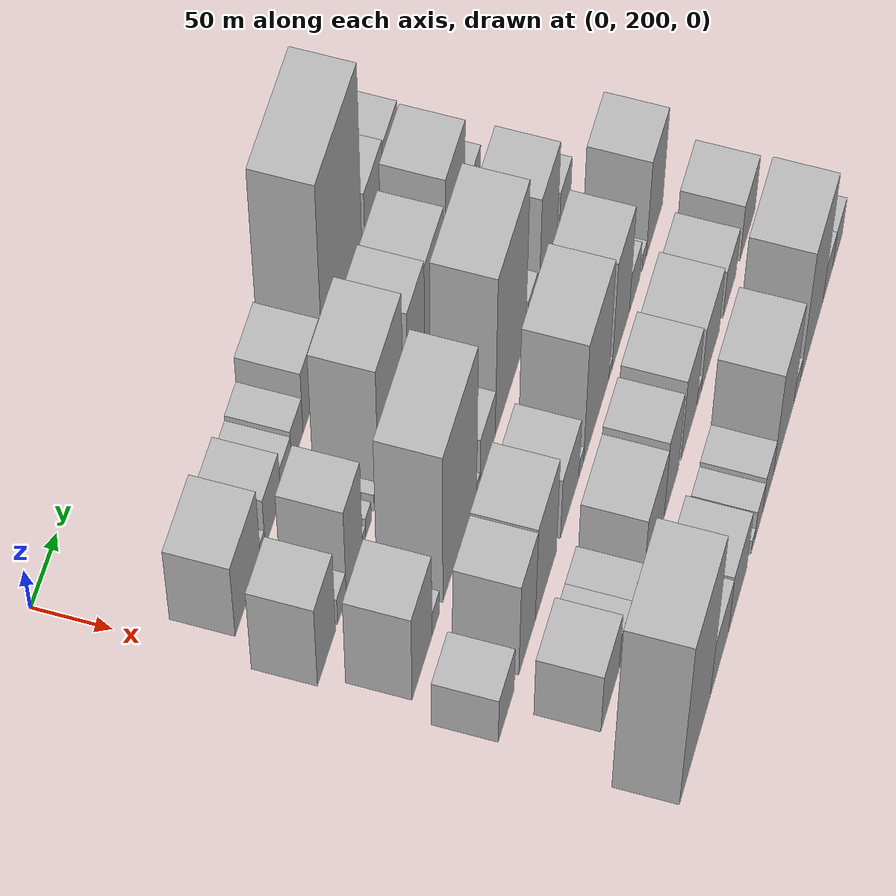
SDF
<sdf version="1.6">
 <world name="default">
  <model name="building_27">
   <static>1</static>
   <pose>100.0000 240.7146 0 0.000000 0.000000 0.000000</pose>
   <link name="link">
    <pose>0 0 45.00 0 0 0</pose>
    <collision name="collision"><geometry><box><size>40.0000 51.0102 90.0000</size></box></geometry></collision>
    <visual name="visual">
     <cast_shadows>0</cast_shadows>
     <geometry><box><size>40.0000 51.0102 90.0000</size></box></geometry>
     <material>
      <script>
       <uri>model://HANNAS_wall/materials/scripts</uri>
       <uri>model://HANNAS_wall/materials/textures</uri>
       <name>vrc/HANNAS_wall</name>
      </script>
     </material>
    </visual>
   </link>
  </model>
  <model name="building_28">
   <static>1</static>
   <pose>100.0000 270.7836 0 0.000000 0.000000 0.000000</pose>
   <link name="link">
    <pose>0 0 10.50 0 0 0</pose>
    <collision name="collision"><geometry><box><size>40.0000 9.1279 21.0000</size></box></geometry></collision>
    <visual name="visual">
     <cast_shadows>0</cast_shadows>
     <geometry><box><size>40.0000 9.1279 21.0000</size></box></geometry>
     <material>
      <script>
       <uri>model://HANNAS_wall/materials/scripts</uri>
       <uri>model://HANNAS_wall/materials/textures</uri>
       <name>vrc/HANNAS_wall</name>
      </script>
     </material>
    </visual>
   </link>
  </model>
  <model name="building_29">
   <static>1</static>
   <pose>100.0000 291.2869 0 0.000000 0.000000 0.000000</pose>
   <link name="link">
    <pose>0 0 30.00 0 0 0</pose>
    <collision name="collision"><geometry><box><size>40.0000 31.8785 60.0000</size></box></geometry></collision>
    <visual name="visual">
     <cast_shadows>0</cast_shadows>
     <geometry><box><size>40.0000 31.8785 60.0000</size></box></geometry>
     <material>
      <script>
       <uri>model://HANNAS_wall/materials/scripts</uri>
       <uri>model://HANNAS_wall/materials/textures</uri>
       <name>vrc/HANNAS_wall</name>
      </script>
     </material>
    </visual>
   </link>
  </model>
  <model name="building_30">
   <static>1</static>
   <pose>100.0000 318.4510 0 0.000000 0.000000 0.000000</pose>
   <link name="link">
    <pose>0 0 19.50 0 0 0</pose>
    <collision name="collision"><geometry><box><size>40.0000 22.4497 39.0000</size></box></geometry></collision>
    <visual name="visual">
     <cast_shadows>0</cast_shadows>
     <geometry><box><size>40.0000 22.4497 39.0000</size></box></geometry>
     <material>
      <script>
       <uri>model://HANNAS_wall/materials/scripts</uri>
       <uri>model://HANNAS_wall/materials/textures</uri>
       <name>vrc/HANNAS_wall</name>
      </script>
     </material>
    </visual>
   </link>
  </model>
  <model name="building_31">
   <static>1</static>
   <pose>100.0000 341.3287 0 0.000000 0.000000 0.000000</pose>
   <link name="link">
    <pose>0 0 22.50 0 0 0</pose>
    <collision name="collision"><geometry><box><size>40.0000 23.3058 45.0000</size></box></geometry></collision>
    <visual name="visual">
     <cast_shadows>0</cast_shadows>
     <geometry><box><size>40.0000 23.3058 45.0000</size></box></geometry>
     <material>
      <script>
       <uri>model://HANNAS_wall/materials/scripts</uri>
       <uri>model://HANNAS_wall/materials/textures</uri>
       <name>vrc/HANNAS_wall</name>
      </script>
     </material>
    </visual>
   </link>
  </model>
  <model name="building_32">
   <static>1</static>
   <pose>100.0000 372.1104 0 0.000000 0.000000 0.000000</pose>
   <link name="link">
    <pose>0 0 37.50 0 0 0</pose>
    <collision name="collision"><geometry><box><size>40.0000 38.2575 75.0000</size></box></geometry></collision>
    <visual name="visual">
     <cast_shadows>0</cast_shadows>
     <geometry><box><size>40.0000 38.2575 75.0000</size></box></geometry>
     <material>
      <script>
       <uri>model://HANNAS_wall/materials/scripts</uri>
       <uri>model://HANNAS_wall/materials/textures</uri>
       <name>vrc/HANNAS_wall</name>
      </script>
     </material>
    </visual>
   </link>
  </model>
  <model name="building_33">
   <static>1</static>
   <pose>100.0000 435.8190 0 0.000000 0.000000 0.000000</pose>
   <link name="link">
    <pose>0 0 112.50 0 0 0</pose>
    <collision name="collision"><geometry><box><size>40.0000 83.1598 225.0000</size></box></geometry></collision>
    <visual name="visual">
     <cast_shadows>0</cast_shadows>
     <geometry><box><size>40.0000 83.1598 225.0000</size></box></geometry>
     <material>
      <script>
       <uri>model://HANNAS_wall/materials/scripts</uri>
       <uri>model://HANNAS_wall/materials/textures</uri>
       <name>vrc/HANNAS_wall</name>
      </script>
     </material>
    </visual>
   </link>
  </model>
  <model name="building_34">
   <static>1</static>
   <pose>100.0000 502.7653 0 0.000000 0.000000 0.000000</pose>
   <link name="link">
    <pose>0 0 33.00 0 0 0</pose>
    <collision name="collision"><geometry><box><size>40.0000 38.7329 66.0000</size></box></geometry></collision>
    <visual name="visual">
     <cast_shadows>0</cast_shadows>
     <geometry><box><size>40.0000 38.7329 66.0000</size></box></geometry>
     <material>
      <script>
       <uri>model://HANNAS_wall/materials/scripts</uri>
       <uri>model://HANNAS_wall/materials/textures</uri>
       <name>vrc/HANNAS_wall</name>
      </script>
     </material>
    </visual>
   </link>
  </model>
  <model name="building_35">
   <static>1</static>
   <pose>100.0000 538.1720 0 0.000000 0.000000 0.000000</pose>
   <link name="link">
    <pose>0 0 30.00 0 0 0</pose>
    <collision name="collision"><geometry><box><size>40.0000 32.0804 60.0000</size></box></geometry></collision>
    <visual name="visual">
     <cast_shadows>0</cast_shadows>
     <geometry><box><size>40.0000 32.0804 60.0000</size></box></geometry>
     <material>
      <script>
       <uri>model://HANNAS_wall/materials/scripts</uri>
       <uri>model://HANNAS_wall/materials/textures</uri>
       <name>vrc/HANNAS_wall</name>
      </script>
     </material>
    </visual>
   </link>
  </model>
  <model name="building_78">
   <static>1</static>
   <pose>155.0000 216.4168 0 0.000000 0.000000 0.000000</pose>
   <link name="link">
    <pose>0 0 51.00 0 0 0</pose>
    <collision name="collision"><geometry><box><size>40.0000 36.9264 102.0000</size></box></geometry></collision>
    <visual name="visual">
     <cast_shadows>0</cast_shadows>
     <geometry><box><size>40.0000 36.9264 102.0000</size></box></geometry>
     <material>
      <script>
       <uri>model://HANNAS_wall/materials/scripts</uri>
       <uri>model://HANNAS_wall/materials/textures</uri>
       <name>vrc/HANNAS_wall</name>
      </script>
     </material>
    </visual>
   </link>
  </model>
  <model name="building_79">
   <static>1</static>
   <pose>155.0000 247.8972 0 0.000000 0.000000 0.000000</pose>
   <link name="link">
    <pose>0 0 16.50 0 0 0</pose>
    <collision name="collision"><geometry><box><size>40.0000 18.0346 33.0000</size></box></geometry></collision>
    <visual name="visual">
     <cast_shadows>0</cast_shadows>
     <geometry><box><size>40.0000 18.0346 33.0000</size></box></geometry>
     <material>
      <script>
       <uri>model://HANNAS_wall/materials/scripts</uri>
       <uri>model://HANNAS_wall/materials/textures</uri>
       <name>vrc/HANNAS_wall</name>
      </script>
     </material>
    </visual>
   </link>
  </model>
  <model name="building_80">
   <static>1</static>
   <pose>155.0000 273.6293 0 0.000000 0.000000 0.000000</pose>
   <link name="link">
    <pose>0 0 55.50 0 0 0</pose>
    <collision name="collision"><geometry><box><size>40.0000 33.4297 111.0000</size></box></geometry></collision>
    <visual name="visual">
     <cast_shadows>0</cast_shadows>
     <geometry><box><size>40.0000 33.4297 111.0000</size></box></geometry>
     <material>
      <script>
       <uri>model://HANNAS_wall/materials/scripts</uri>
       <uri>model://HANNAS_wall/materials/textures</uri>
       <name>vrc/HANNAS_wall</name>
      </script>
     </material>
    </visual>
   </link>
  </model>
  <model name="building_81">
   <static>1</static>
   <pose>155.0000 293.7984 0 0.000000 0.000000 0.000000</pose>
   <link name="link">
    <pose>0 0 7.50 0 0 0</pose>
    <collision name="collision"><geometry><box><size>40.0000 6.9085 15.0000</size></box></geometry></collision>
    <visual name="visual">
     <cast_shadows>0</cast_shadows>
     <geometry><box><size>40.0000 6.9085 15.0000</size></box></geometry>
     <material>
      <script>
       <uri>model://HANNAS_wall/materials/scripts</uri>
       <uri>model://HANNAS_wall/materials/textures</uri>
       <name>vrc/HANNAS_wall</name>
      </script>
     </material>
    </visual>
   </link>
  </model>
  <model name="building_82">
   <static>1</static>
   <pose>155.0000 303.1619 0 0.000000 0.000000 0.000000</pose>
   <link name="link">
    <pose>0 0 12.00 0 0 0</pose>
    <collision name="collision"><geometry><box><size>40.0000 11.8185 24.0000</size></box></geometry></collision>
    <visual name="visual">
     <cast_shadows>0</cast_shadows>
     <geometry><box><size>40.0000 11.8185 24.0000</size></box></geometry>
     <material>
      <script>
       <uri>model://HANNAS_wall/materials/scripts</uri>
       <uri>model://HANNAS_wall/materials/textures</uri>
       <name>vrc/HANNAS_wall</name>
      </script>
     </material>
    </visual>
   </link>
  </model>
  <model name="building_83">
   <static>1</static>
   <pose>155.0000 319.4880 0 0.000000 0.000000 0.000000</pose>
   <link name="link">
    <pose>0 0 10.50 0 0 0</pose>
    <collision name="collision"><geometry><box><size>40.0000 8.8337 21.0000</size></box></geometry></collision>
    <visual name="visual">
     <cast_shadows>0</cast_shadows>
     <geometry><box><size>40.0000 8.8337 21.0000</size></box></geometry>
     <material>
      <script>
       <uri>model://HANNAS_wall/materials/scripts</uri>
       <uri>model://HANNAS_wall/materials/textures</uri>
       <name>vrc/HANNAS_wall</name>
      </script>
     </material>
    </visual>
   </link>
  </model>
  <model name="building_84">
   <static>1</static>
   <pose>155.0000 350.1157 0 0.000000 0.000000 0.000000</pose>
   <link name="link">
    <pose>0 0 79.50 0 0 0</pose>
    <collision name="collision"><geometry><box><size>40.0000 52.4217 159.0000</size></box></geometry></collision>
    <visual name="visual">
     <cast_shadows>0</cast_shadows>
     <geometry><box><size>40.0000 52.4217 159.0000</size></box></geometry>
     <material>
      <script>
       <uri>model://HANNAS_wall/materials/scripts</uri>
       <uri>model://HANNAS_wall/materials/textures</uri>
       <name>vrc/HANNAS_wall</name>
      </script>
     </material>
    </visual>
   </link>
  </model>
  <model name="building_85">
   <static>1</static>
   <pose>155.0000 404.3906 0 0.000000 0.000000 0.000000</pose>
   <link name="link">
    <pose>0 0 58.50 0 0 0</pose>
    <collision name="collision"><geometry><box><size>40.0000 36.1281 117.0000</size></box></geometry></collision>
    <visual name="visual">
     <cast_shadows>0</cast_shadows>
     <geometry><box><size>40.0000 36.1281 117.0000</size></box></geometry>
     <material>
      <script>
       <uri>model://HANNAS_wall/materials/scripts</uri>
       <uri>model://HANNAS_wall/materials/textures</uri>
       <name>vrc/HANNAS_wall</name>
      </script>
     </material>
    </visual>
   </link>
  </model>
  <model name="building_86">
   <static>1</static>
   <pose>155.0000 442.9850 0 0.000000 0.000000 0.000000</pose>
   <link name="link">
    <pose>0 0 55.50 0 0 0</pose>
    <collision name="collision"><geometry><box><size>40.0000 41.0607 111.0000</size></box></geometry></collision>
    <visual name="visual">
     <cast_shadows>0</cast_shadows>
     <geometry><box><size>40.0000 41.0607 111.0000</size></box></geometry>
     <material>
      <script>
       <uri>model://HANNAS_wall/materials/scripts</uri>
       <uri>model://HANNAS_wall/materials/textures</uri>
       <name>vrc/HANNAS_wall</name>
      </script>
     </material>
    </visual>
   </link>
  </model>
  <model name="building_87">
   <static>1</static>
   <pose>155.0000 488.6157 0 0.000000 0.000000 0.000000</pose>
   <link name="link">
    <pose>0 0 67.50 0 0 0</pose>
    <collision name="collision"><geometry><box><size>40.0000 42.2006 135.0000</size></box></geometry></collision>
    <visual name="visual">
     <cast_shadows>0</cast_shadows>
     <geometry><box><size>40.0000 42.2006 135.0000</size></box></geometry>
     <material>
      <script>
       <uri>model://HANNAS_wall/materials/scripts</uri>
       <uri>model://HANNAS_wall/materials/textures</uri>
       <name>vrc/HANNAS_wall</name>
      </script>
     </material>
    </visual>
   </link>
  </model>
  <model name="building_88">
   <static>1</static>
   <pose>155.0000 531.9829 0 0.000000 0.000000 0.000000</pose>
   <link name="link">
    <pose>0 0 24.00 0 0 0</pose>
    <collision name="collision"><geometry><box><size>40.0000 26.5337 48.0000</size></box></geometry></collision>
    <visual name="visual">
     <cast_shadows>0</cast_shadows>
     <geometry><box><size>40.0000 26.5337 48.0000</size></box></geometry>
     <material>
      <script>
       <uri>model://HANNAS_wall/materials/scripts</uri>
       <uri>model://HANNAS_wall/materials/textures</uri>
       <name>vrc/HANNAS_wall</name>
      </script>
     </material>
    </visual>
   </link>
  </model>
  <model name="building_133">
   <static>1</static>
   <pose>210.0000 225.2152 0 0.000000 0.000000 0.000000</pose>
   <link name="link">
    <pose>0 0 54.00 0 0 0</pose>
    <collision name="collision"><geometry><box><size>40.0000 41.5363 108.0000</size></box></geometry></collision>
    <visual name="visual">
     <cast_shadows>0</cast_shadows>
     <geometry><box><size>40.0000 41.5363 108.0000</size></box></geometry>
     <material>
      <script>
       <uri>model://HANNAS_wall/materials/scripts</uri>
       <uri>model://HANNAS_wall/materials/textures</uri>
       <name>vrc/HANNAS_wall</name>
      </script>
     </material>
    </visual>
   </link>
  </model>
  <model name="building_134">
   <static>1</static>
   <pose>210.0000 254.0594 0 0.000000 0.000000 0.000000</pose>
   <link name="link">
    <pose>0 0 15.00 0 0 0</pose>
    <collision name="collision"><geometry><box><size>40.0000 16.1522 30.0000</size></box></geometry></collision>
    <visual name="visual">
     <cast_shadows>0</cast_shadows>
     <geometry><box><size>40.0000 16.1522 30.0000</size></box></geometry>
     <material>
      <script>
       <uri>model://HANNAS_wall/materials/scripts</uri>
       <uri>model://HANNAS_wall/materials/textures</uri>
       <name>vrc/HANNAS_wall</name>
      </script>
     </material>
    </visual>
   </link>
  </model>
  <model name="building_135">
   <static>1</static>
   <pose>210.0000 305.4260 0 0.000000 0.000000 0.000000</pose>
   <link name="link">
    <pose>0 0 93.00 0 0 0</pose>
    <collision name="collision"><geometry><box><size>40.0000 72.5810 186.0000</size></box></geometry></collision>
    <visual name="visual">
     <cast_shadows>0</cast_shadows>
     <geometry><box><size>40.0000 72.5810 186.0000</size></box></geometry>
     <material>
      <script>
       <uri>model://HANNAS_wall/materials/scripts</uri>
       <uri>model://HANNAS_wall/materials/textures</uri>
       <name>vrc/HANNAS_wall</name>
      </script>
     </material>
    </visual>
   </link>
  </model>
  <model name="building_136">
   <static>1</static>
   <pose>210.0000 345.4363 0 0.000000 0.000000 0.000000</pose>
   <link name="link">
    <pose>0 0 7.50 0 0 0</pose>
    <collision name="collision"><geometry><box><size>40.0000 7.4396 15.0000</size></box></geometry></collision>
    <visual name="visual">
     <cast_shadows>0</cast_shadows>
     <geometry><box><size>40.0000 7.4396 15.0000</size></box></geometry>
     <material>
      <script>
       <uri>model://HANNAS_wall/materials/scripts</uri>
       <uri>model://HANNAS_wall/materials/textures</uri>
       <name>vrc/HANNAS_wall</name>
      </script>
     </material>
    </visual>
   </link>
  </model>
  <model name="building_137">
   <static>1</static>
   <pose>210.0000 365.7581 0 0.000000 0.000000 0.000000</pose>
   <link name="link">
    <pose>0 0 28.50 0 0 0</pose>
    <collision name="collision"><geometry><box><size>40.0000 33.2039 57.0000</size></box></geometry></collision>
    <visual name="visual">
     <cast_shadows>0</cast_shadows>
     <geometry><box><size>40.0000 33.2039 57.0000</size></box></geometry>
     <material>
      <script>
       <uri>model://HANNAS_wall/materials/scripts</uri>
       <uri>model://HANNAS_wall/materials/textures</uri>
       <name>vrc/HANNAS_wall</name>
      </script>
     </material>
    </visual>
   </link>
  </model>
  <model name="building_138">
   <static>1</static>
   <pose>210.0000 415.9028 0 0.000000 0.000000 0.000000</pose>
   <link name="link">
    <pose>0 0 96.00 0 0 0</pose>
    <collision name="collision"><geometry><box><size>40.0000 67.0856 192.0000</size></box></geometry></collision>
    <visual name="visual">
     <cast_shadows>0</cast_shadows>
     <geometry><box><size>40.0000 67.0856 192.0000</size></box></geometry>
     <material>
      <script>
       <uri>model://HANNAS_wall/materials/scripts</uri>
       <uri>model://HANNAS_wall/materials/textures</uri>
       <name>vrc/HANNAS_wall</name>
      </script>
     </material>
    </visual>
   </link>
  </model>
  <model name="building_139">
   <static>1</static>
   <pose>210.0000 464.8618 0 0.000000 0.000000 0.000000</pose>
   <link name="link">
    <pose>0 0 19.50 0 0 0</pose>
    <collision name="collision"><geometry><box><size>40.0000 20.8324 39.0000</size></box></geometry></collision>
    <visual name="visual">
     <cast_shadows>0</cast_shadows>
     <geometry><box><size>40.0000 20.8324 39.0000</size></box></geometry>
     <material>
      <script>
       <uri>model://HANNAS_wall/materials/scripts</uri>
       <uri>model://HANNAS_wall/materials/textures</uri>
       <name>vrc/HANNAS_wall</name>
      </script>
     </material>
    </visual>
   </link>
  </model>
  <model name="building_140">
   <static>1</static>
   <pose>210.0000 500.6678 0 0.000000 0.000000 0.000000</pose>
   <link name="link">
    <pose>0 0 58.50 0 0 0</pose>
    <collision name="collision"><geometry><box><size>40.0000 40.7796 117.0000</size></box></geometry></collision>
    <visual name="visual">
     <cast_shadows>0</cast_shadows>
     <geometry><box><size>40.0000 40.7796 117.0000</size></box></geometry>
     <material>
      <script>
       <uri>model://HANNAS_wall/materials/scripts</uri>
       <uri>model://HANNAS_wall/materials/textures</uri>
       <name>vrc/HANNAS_wall</name>
      </script>
     </material>
    </visual>
   </link>
  </model>
  <model name="building_141">
   <static>1</static>
   <pose>210.0000 539.1835 0 0.000000 0.000000 0.000000</pose>
   <link name="link">
    <pose>0 0 24.00 0 0 0</pose>
    <collision name="collision"><geometry><box><size>40.0000 26.2518 48.0000</size></box></geometry></collision>
    <visual name="visual">
     <cast_shadows>0</cast_shadows>
     <geometry><box><size>40.0000 26.2518 48.0000</size></box></geometry>
     <material>
      <script>
       <uri>model://HANNAS_wall/materials/scripts</uri>
       <uri>model://HANNAS_wall/materials/textures</uri>
       <name>vrc/HANNAS_wall</name>
      </script>
     </material>
    </visual>
   </link>
  </model>
  <model name="building_185">
   <static>1</static>
   <pose>265.0000 209.6259 0 0.000000 0.000000 0.000000</pose>
   <link name="link">
    <pose>0 0 28.50 0 0 0</pose>
    <collision name="collision"><geometry><box><size>40.0000 34.0822 57.0000</size></box></geometry></collision>
    <visual name="visual">
     <cast_shadows>0</cast_shadows>
     <geometry><box><size>40.0000 34.0822 57.0000</size></box></geometry>
     <material>
      <script>
       <uri>model://HANNAS_wall/materials/scripts</uri>
       <uri>model://HANNAS_wall/materials/textures</uri>
       <name>vrc/HANNAS_wall</name>
      </script>
     </material>
    </visual>
   </link>
  </model>
  <model name="building_186">
   <static>1</static>
   <pose>265.0000 254.6039 0 0.000000 0.000000 0.000000</pose>
   <link name="link">
    <pose>0 0 58.50 0 0 0</pose>
    <collision name="collision"><geometry><box><size>40.0000 35.8738 117.0000</size></box></geometry></collision>
    <visual name="visual">
     <cast_shadows>0</cast_shadows>
     <geometry><box><size>40.0000 35.8738 117.0000</size></box></geometry>
     <material>
      <script>
       <uri>model://HANNAS_wall/materials/scripts</uri>
       <uri>model://HANNAS_wall/materials/textures</uri>
       <name>vrc/HANNAS_wall</name>
      </script>
     </material>
    </visual>
   </link>
  </model>
  <model name="building_187">
   <static>1</static>
   <pose>265.0000 295.7460 0 0.000000 0.000000 0.000000</pose>
   <link name="link">
    <pose>0 0 60.00 0 0 0</pose>
    <collision name="collision"><geometry><box><size>40.0000 46.4103 120.0000</size></box></geometry></collision>
    <visual name="visual">
     <cast_shadows>0</cast_shadows>
     <geometry><box><size>40.0000 46.4103 120.0000</size></box></geometry>
     <material>
      <script>
       <uri>model://HANNAS_wall/materials/scripts</uri>
       <uri>model://HANNAS_wall/materials/textures</uri>
       <name>vrc/HANNAS_wall</name>
      </script>
     </material>
    </visual>
   </link>
  </model>
  <model name="building_188">
   <static>1</static>
   <pose>265.0000 348.4726 0 0.000000 0.000000 0.000000</pose>
   <link name="link">
    <pose>0 0 37.50 0 0 0</pose>
    <collision name="collision"><geometry><box><size>40.0000 41.0430 75.0000</size></box></geometry></collision>
    <visual name="visual">
     <cast_shadows>0</cast_shadows>
     <geometry><box><size>40.0000 41.0430 75.0000</size></box></geometry>
     <material>
      <script>
       <uri>model://HANNAS_wall/materials/scripts</uri>
       <uri>model://HANNAS_wall/materials/textures</uri>
       <name>vrc/HANNAS_wall</name>
      </script>
     </material>
    </visual>
   </link>
  </model>
  <model name="building_189">
   <static>1</static>
   <pose>265.0000 374.2201 0 0.000000 0.000000 0.000000</pose>
   <link name="link">
    <pose>0 0 10.50 0 0 0</pose>
    <collision name="collision"><geometry><box><size>40.0000 10.4519 21.0000</size></box></geometry></collision>
    <visual name="visual">
     <cast_shadows>0</cast_shadows>
     <geometry><box><size>40.0000 10.4519 21.0000</size></box></geometry>
     <material>
      <script>
       <uri>model://HANNAS_wall/materials/scripts</uri>
       <uri>model://HANNAS_wall/materials/textures</uri>
       <name>vrc/HANNAS_wall</name>
      </script>
     </material>
    </visual>
   </link>
  </model>
  <model name="building_190">
   <static>1</static>
   <pose>265.0000 408.3897 0 0.000000 0.000000 0.000000</pose>
   <link name="link">
    <pose>0 0 73.50 0 0 0</pose>
    <collision name="collision"><geometry><box><size>40.0000 57.8872 147.0000</size></box></geometry></collision>
    <visual name="visual">
     <cast_shadows>0</cast_shadows>
     <geometry><box><size>40.0000 57.8872 147.0000</size></box></geometry>
     <material>
      <script>
       <uri>model://HANNAS_wall/materials/scripts</uri>
       <uri>model://HANNAS_wall/materials/textures</uri>
       <name>vrc/HANNAS_wall</name>
      </script>
     </material>
    </visual>
   </link>
  </model>
  <model name="building_191">
   <static>1</static>
   <pose>265.0000 440.9816 0 0.000000 0.000000 0.000000</pose>
   <link name="link">
    <pose>0 0 7.50 0 0 0</pose>
    <collision name="collision"><geometry><box><size>40.0000 7.2967 15.0000</size></box></geometry></collision>
    <visual name="visual">
     <cast_shadows>0</cast_shadows>
     <geometry><box><size>40.0000 7.2967 15.0000</size></box></geometry>
     <material>
      <script>
       <uri>model://HANNAS_wall/materials/scripts</uri>
       <uri>model://HANNAS_wall/materials/textures</uri>
       <name>vrc/HANNAS_wall</name>
      </script>
     </material>
    </visual>
   </link>
  </model>
  <model name="building_192">
   <static>1</static>
   <pose>265.0000 464.5896 0 0.000000 0.000000 0.000000</pose>
   <link name="link">
    <pose>0 0 64.50 0 0 0</pose>
    <collision name="collision"><geometry><box><size>40.0000 39.9193 129.0000</size></box></geometry></collision>
    <visual name="visual">
     <cast_shadows>0</cast_shadows>
     <geometry><box><size>40.0000 39.9193 129.0000</size></box></geometry>
     <material>
      <script>
       <uri>model://HANNAS_wall/materials/scripts</uri>
       <uri>model://HANNAS_wall/materials/textures</uri>
       <name>vrc/HANNAS_wall</name>
      </script>
     </material>
    </visual>
   </link>
  </model>
  <model name="building_193">
   <static>1</static>
   <pose>265.0000 496.7167 0 0.000000 0.000000 0.000000</pose>
   <link name="link">
    <pose>0 0 22.50 0 0 0</pose>
    <collision name="collision"><geometry><box><size>40.0000 24.3349 45.0000</size></box></geometry></collision>
    <visual name="visual">
     <cast_shadows>0</cast_shadows>
     <geometry><box><size>40.0000 24.3349 45.0000</size></box></geometry>
     <material>
      <script>
       <uri>model://HANNAS_wall/materials/scripts</uri>
       <uri>model://HANNAS_wall/materials/textures</uri>
       <name>vrc/HANNAS_wall</name>
      </script>
     </material>
    </visual>
   </link>
  </model>
  <model name="building_194">
   <static>1</static>
   <pose>265.0000 518.8913 0 0.000000 0.000000 0.000000</pose>
   <link name="link">
    <pose>0 0 10.50 0 0 0</pose>
    <collision name="collision"><geometry><box><size>40.0000 10.0142 21.0000</size></box></geometry></collision>
    <visual name="visual">
     <cast_shadows>0</cast_shadows>
     <geometry><box><size>40.0000 10.0142 21.0000</size></box></geometry>
     <material>
      <script>
       <uri>model://HANNAS_wall/materials/scripts</uri>
       <uri>model://HANNAS_wall/materials/textures</uri>
       <name>vrc/HANNAS_wall</name>
      </script>
     </material>
    </visual>
   </link>
  </model>
  <model name="building_195">
   <static>1</static>
   <pose>265.0000 543.3055 0 0.000000 0.000000 0.000000</pose>
   <link name="link">
    <pose>0 0 57.00 0 0 0</pose>
    <collision name="collision"><geometry><box><size>40.0000 38.8143 114.0000</size></box></geometry></collision>
    <visual name="visual">
     <cast_shadows>0</cast_shadows>
     <geometry><box><size>40.0000 38.8143 114.0000</size></box></geometry>
     <material>
      <script>
       <uri>model://HANNAS_wall/materials/scripts</uri>
       <uri>model://HANNAS_wall/materials/textures</uri>
       <name>vrc/HANNAS_wall</name>
      </script>
     </material>
    </visual>
   </link>
  </model>
  <model name="building_236">
   <static>1</static>
   <pose>320.0000 235.3920 0 0.000000 0.000000 0.000000</pose>
   <link name="link">
    <pose>0 0 37.50 0 0 0</pose>
    <collision name="collision"><geometry><box><size>40.0000 40.8041 75.0000</size></box></geometry></collision>
    <visual name="visual">
     <cast_shadows>0</cast_shadows>
     <geometry><box><size>40.0000 40.8041 75.0000</size></box></geometry>
     <material>
      <script>
       <uri>model://HANNAS_wall/materials/scripts</uri>
       <uri>model://HANNAS_wall/materials/textures</uri>
       <name>vrc/HANNAS_wall</name>
      </script>
     </material>
    </visual>
   </link>
  </model>
  <model name="building_237">
   <static>1</static>
   <pose>320.0000 267.7202 0 0.000000 0.000000 0.000000</pose>
   <link name="link">
    <pose>0 0 22.50 0 0 0</pose>
    <collision name="collision"><geometry><box><size>40.0000 23.8522 45.0000</size></box></geometry></collision>
    <visual name="visual">
     <cast_shadows>0</cast_shadows>
     <geometry><box><size>40.0000 23.8522 45.0000</size></box></geometry>
     <material>
      <script>
       <uri>model://HANNAS_wall/materials/scripts</uri>
       <uri>model://HANNAS_wall/materials/textures</uri>
       <name>vrc/HANNAS_wall</name>
      </script>
     </material>
    </visual>
   </link>
  </model>
  <model name="building_238">
   <static>1</static>
   <pose>320.0000 292.0743 0 0.000000 0.000000 0.000000</pose>
   <link name="link">
    <pose>0 0 22.50 0 0 0</pose>
    <collision name="collision"><geometry><box><size>40.0000 24.8560 45.0000</size></box></geometry></collision>
    <visual name="visual">
     <cast_shadows>0</cast_shadows>
     <geometry><box><size>40.0000 24.8560 45.0000</size></box></geometry>
     <material>
      <script>
       <uri>model://HANNAS_wall/materials/scripts</uri>
       <uri>model://HANNAS_wall/materials/textures</uri>
       <name>vrc/HANNAS_wall</name>
      </script>
     </material>
    </visual>
   </link>
  </model>
  <model name="building_239">
   <static>1</static>
   <pose>320.0000 334.0748 0 0.000000 0.000000 0.000000</pose>
   <link name="link">
    <pose>0 0 43.50 0 0 0</pose>
    <collision name="collision"><geometry><box><size>40.0000 47.1450 87.0000</size></box></geometry></collision>
    <visual name="visual">
     <cast_shadows>0</cast_shadows>
     <geometry><box><size>40.0000 47.1450 87.0000</size></box></geometry>
     <material>
      <script>
       <uri>model://HANNAS_wall/materials/scripts</uri>
       <uri>model://HANNAS_wall/materials/textures</uri>
       <name>vrc/HANNAS_wall</name>
      </script>
     </material>
    </visual>
   </link>
  </model>
  <model name="building_240">
   <static>1</static>
   <pose>320.0000 374.3887 0 0.000000 0.000000 0.000000</pose>
   <link name="link">
    <pose>0 0 48.00 0 0 0</pose>
    <collision name="collision"><geometry><box><size>40.0000 33.4829 96.0000</size></box></geometry></collision>
    <visual name="visual">
     <cast_shadows>0</cast_shadows>
     <geometry><box><size>40.0000 33.4829 96.0000</size></box></geometry>
     <material>
      <script>
       <uri>model://HANNAS_wall/materials/scripts</uri>
       <uri>model://HANNAS_wall/materials/textures</uri>
       <name>vrc/HANNAS_wall</name>
      </script>
     </material>
    </visual>
   </link>
  </model>
  <model name="building_241">
   <static>1</static>
   <pose>320.0000 415.4538 0 0.000000 0.000000 0.000000</pose>
   <link name="link">
    <pose>0 0 49.50 0 0 0</pose>
    <collision name="collision"><geometry><box><size>40.0000 36.6473 99.0000</size></box></geometry></collision>
    <visual name="visual">
     <cast_shadows>0</cast_shadows>
     <geometry><box><size>40.0000 36.6473 99.0000</size></box></geometry>
     <material>
      <script>
       <uri>model://HANNAS_wall/materials/scripts</uri>
       <uri>model://HANNAS_wall/materials/textures</uri>
       <name>vrc/HANNAS_wall</name>
      </script>
     </material>
    </visual>
   </link>
  </model>
  <model name="building_242">
   <static>1</static>
   <pose>320.0000 438.8785 0 0.000000 0.000000 0.000000</pose>
   <link name="link">
    <pose>0 0 10.50 0 0 0</pose>
    <collision name="collision"><geometry><box><size>40.0000 10.2020 21.0000</size></box></geometry></collision>
    <visual name="visual">
     <cast_shadows>0</cast_shadows>
     <geometry><box><size>40.0000 10.2020 21.0000</size></box></geometry>
     <material>
      <script>
       <uri>model://HANNAS_wall/materials/scripts</uri>
       <uri>model://HANNAS_wall/materials/textures</uri>
       <name>vrc/HANNAS_wall</name>
      </script>
     </material>
    </visual>
   </link>
  </model>
  <model name="building_243">
   <static>1</static>
   <pose>320.0000 465.5580 0 0.000000 0.000000 0.000000</pose>
   <link name="link">
    <pose>0 0 39.00 0 0 0</pose>
    <collision name="collision"><geometry><box><size>40.0000 43.1569 78.0000</size></box></geometry></collision>
    <visual name="visual">
     <cast_shadows>0</cast_shadows>
     <geometry><box><size>40.0000 43.1569 78.0000</size></box></geometry>
     <material>
      <script>
       <uri>model://HANNAS_wall/materials/scripts</uri>
       <uri>model://HANNAS_wall/materials/textures</uri>
       <name>vrc/HANNAS_wall</name>
      </script>
     </material>
    </visual>
   </link>
  </model>
  <model name="building_244">
   <static>1</static>
   <pose>320.0000 511.6909 0 0.000000 0.000000 0.000000</pose>
   <link name="link">
    <pose>0 0 28.50 0 0 0</pose>
    <collision name="collision"><geometry><box><size>40.0000 31.1090 57.0000</size></box></geometry></collision>
    <visual name="visual">
     <cast_shadows>0</cast_shadows>
     <geometry><box><size>40.0000 31.1090 57.0000</size></box></geometry>
     <material>
      <script>
       <uri>model://HANNAS_wall/materials/scripts</uri>
       <uri>model://HANNAS_wall/materials/textures</uri>
       <name>vrc/HANNAS_wall</name>
      </script>
     </material>
    </visual>
   </link>
  </model>
  <model name="building_245">
   <static>1</static>
   <pose>320.0000 555.4670 0 0.000000 0.000000 0.000000</pose>
   <link name="link">
    <pose>0 0 33.00 0 0 0</pose>
    <collision name="collision"><geometry><box><size>40.0000 36.4432 66.0000</size></box></geometry></collision>
    <visual name="visual">
     <cast_shadows>0</cast_shadows>
     <geometry><box><size>40.0000 36.4432 66.0000</size></box></geometry>
     <material>
      <script>
       <uri>model://HANNAS_wall/materials/scripts</uri>
       <uri>model://HANNAS_wall/materials/textures</uri>
       <name>vrc/HANNAS_wall</name>
      </script>
     </material>
    </visual>
   </link>
  </model>
  <model name="building_287">
   <static>1</static>
   <pose>375.0000 218.4012 0 0.000000 0.000000 0.000000</pose>
   <link name="link">
    <pose>0 0 106.50 0 0 0</pose>
    <collision name="collision"><geometry><box><size>40.0000 69.8081 213.0000</size></box></geometry></collision>
    <visual name="visual">
     <cast_shadows>0</cast_shadows>
     <geometry><box><size>40.0000 69.8081 213.0000</size></box></geometry>
     <material>
      <script>
       <uri>model://HANNAS_wall/materials/scripts</uri>
       <uri>model://HANNAS_wall/materials/textures</uri>
       <name>vrc/HANNAS_wall</name>
      </script>
     </material>
    </visual>
   </link>
  </model>
  <model name="building_288">
   <static>1</static>
   <pose>375.0000 274.3791 0 0.000000 0.000000 0.000000</pose>
   <link name="link">
    <pose>0 0 36.00 0 0 0</pose>
    <collision name="collision"><geometry><box><size>40.0000 42.1478 72.0000</size></box></geometry></collision>
    <visual name="visual">
     <cast_shadows>0</cast_shadows>
     <geometry><box><size>40.0000 42.1478 72.0000</size></box></geometry>
     <material>
      <script>
       <uri>model://HANNAS_wall/materials/scripts</uri>
       <uri>model://HANNAS_wall/materials/textures</uri>
       <name>vrc/HANNAS_wall</name>
      </script>
     </material>
    </visual>
   </link>
  </model>
  <model name="building_289">
   <static>1</static>
   <pose>375.0000 316.9756 0 0.000000 0.000000 0.000000</pose>
   <link name="link">
    <pose>0 0 37.50 0 0 0</pose>
    <collision name="collision"><geometry><box><size>40.0000 43.0451 75.0000</size></box></geometry></collision>
    <visual name="visual">
     <cast_shadows>0</cast_shadows>
     <geometry><box><size>40.0000 43.0451 75.0000</size></box></geometry>
     <material>
      <script>
       <uri>model://HANNAS_wall/materials/scripts</uri>
       <uri>model://HANNAS_wall/materials/textures</uri>
       <name>vrc/HANNAS_wall</name>
      </script>
     </material>
    </visual>
   </link>
  </model>
  <model name="building_290">
   <static>1</static>
   <pose>375.0000 352.6744 0 0.000000 0.000000 0.000000</pose>
   <link name="link">
    <pose>0 0 9.00 0 0 0</pose>
    <collision name="collision"><geometry><box><size>40.0000 8.3525 18.0000</size></box></geometry></collision>
    <visual name="visual">
     <cast_shadows>0</cast_shadows>
     <geometry><box><size>40.0000 8.3525 18.0000</size></box></geometry>
     <material>
      <script>
       <uri>model://HANNAS_wall/materials/scripts</uri>
       <uri>model://HANNAS_wall/materials/textures</uri>
       <name>vrc/HANNAS_wall</name>
      </script>
     </material>
    </visual>
   </link>
  </model>
  <model name="building_291">
   <static>1</static>
   <pose>375.0000 366.7067 0 0.000000 0.000000 0.000000</pose>
   <link name="link">
    <pose>0 0 19.50 0 0 0</pose>
    <collision name="collision"><geometry><box><size>40.0000 19.7120 39.0000</size></box></geometry></collision>
    <visual name="visual">
     <cast_shadows>0</cast_shadows>
     <geometry><box><size>40.0000 19.7120 39.0000</size></box></geometry>
     <material>
      <script>
       <uri>model://HANNAS_wall/materials/scripts</uri>
       <uri>model://HANNAS_wall/materials/textures</uri>
       <name>vrc/HANNAS_wall</name>
      </script>
     </material>
    </visual>
   </link>
  </model>
  <model name="building_292">
   <static>1</static>
   <pose>375.0000 389.2954 0 0.000000 0.000000 0.000000</pose>
   <link name="link">
    <pose>0 0 22.50 0 0 0</pose>
    <collision name="collision"><geometry><box><size>40.0000 25.4656 45.0000</size></box></geometry></collision>
    <visual name="visual">
     <cast_shadows>0</cast_shadows>
     <geometry><box><size>40.0000 25.4656 45.0000</size></box></geometry>
     <material>
      <script>
       <uri>model://HANNAS_wall/materials/scripts</uri>
       <uri>model://HANNAS_wall/materials/textures</uri>
       <name>vrc/HANNAS_wall</name>
      </script>
     </material>
    </visual>
   </link>
  </model>
  <model name="building_293">
   <static>1</static>
   <pose>375.0000 426.5447 0 0.000000 0.000000 0.000000</pose>
   <link name="link">
    <pose>0 0 63.00 0 0 0</pose>
    <collision name="collision"><geometry><box><size>40.0000 49.0330 126.0000</size></box></geometry></collision>
    <visual name="visual">
     <cast_shadows>0</cast_shadows>
     <geometry><box><size>40.0000 49.0330 126.0000</size></box></geometry>
     <material>
      <script>
       <uri>model://HANNAS_wall/materials/scripts</uri>
       <uri>model://HANNAS_wall/materials/textures</uri>
       <name>vrc/HANNAS_wall</name>
      </script>
     </material>
    </visual>
   </link>
  </model>
  <model name="building_294">
   <static>1</static>
   <pose>375.0000 459.1976 0 0.000000 0.000000 0.000000</pose>
   <link name="link">
    <pose>0 0 15.00 0 0 0</pose>
    <collision name="collision"><geometry><box><size>40.0000 16.2727 30.0000</size></box></geometry></collision>
    <visual name="visual">
     <cast_shadows>0</cast_shadows>
     <geometry><box><size>40.0000 16.2727 30.0000</size></box></geometry>
     <material>
      <script>
       <uri>model://HANNAS_wall/materials/scripts</uri>
       <uri>model://HANNAS_wall/materials/textures</uri>
       <name>vrc/HANNAS_wall</name>
      </script>
     </material>
    </visual>
   </link>
  </model>
  <model name="building_295">
   <static>1</static>
   <pose>375.0000 495.0105 0 0.000000 0.000000 0.000000</pose>
   <link name="link">
    <pose>0 0 78.00 0 0 0</pose>
    <collision name="collision"><geometry><box><size>40.0000 55.3531 156.0000</size></box></geometry></collision>
    <visual name="visual">
     <cast_shadows>0</cast_shadows>
     <geometry><box><size>40.0000 55.3531 156.0000</size></box></geometry>
     <material>
      <script>
       <uri>model://HANNAS_wall/materials/scripts</uri>
       <uri>model://HANNAS_wall/materials/textures</uri>
       <name>vrc/HANNAS_wall</name>
      </script>
     </material>
    </visual>
   </link>
  </model>
  <model name="building_296">
   <static>1</static>
   <pose>375.0000 534.9893 0 0.000000 0.000000 0.000000</pose>
   <link name="link">
    <pose>0 0 22.50 0 0 0</pose>
    <collision name="collision"><geometry><box><size>40.0000 24.6045 45.0000</size></box></geometry></collision>
    <visual name="visual">
     <cast_shadows>0</cast_shadows>
     <geometry><box><size>40.0000 24.6045 45.0000</size></box></geometry>
     <material>
      <script>
       <uri>model://HANNAS_wall/materials/scripts</uri>
       <uri>model://HANNAS_wall/materials/textures</uri>
       <name>vrc/HANNAS_wall</name>
      </script>
     </material>
    </visual>
   </link>
  </model>
  <model name="building_297">
   <static>1</static>
   <pose>375.0000 559.5730 0 0.000000 0.000000 0.000000</pose>
   <link name="link">
    <pose>0 0 22.50 0 0 0</pose>
    <collision name="collision"><geometry><box><size>40.0000 24.5629 45.0000</size></box></geometry></collision>
    <visual name="visual">
     <cast_shadows>0</cast_shadows>
     <geometry><box><size>40.0000 24.5629 45.0000</size></box></geometry>
     <material>
      <script>
       <uri>model://HANNAS_wall/materials/scripts</uri>
       <uri>model://HANNAS_wall/materials/textures</uri>
       <name>vrc/HANNAS_wall</name>
      </script>
     </material>
    </visual>
   </link>
  </model>
 </world>
</sdf>
